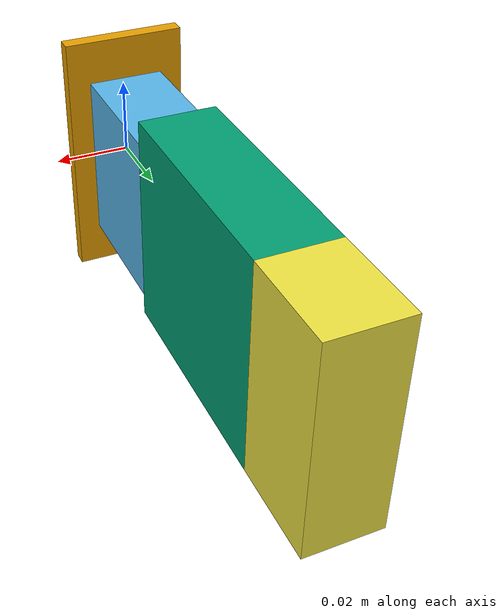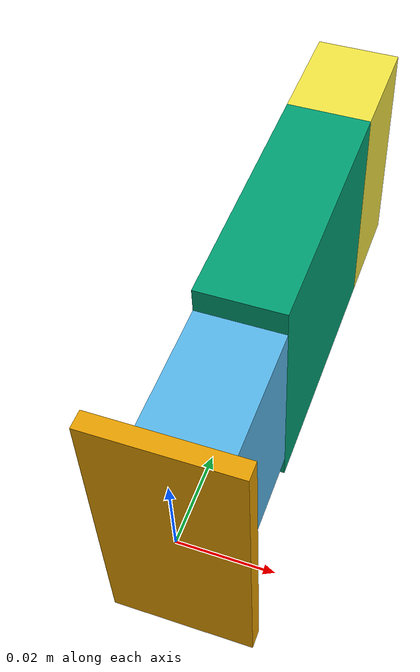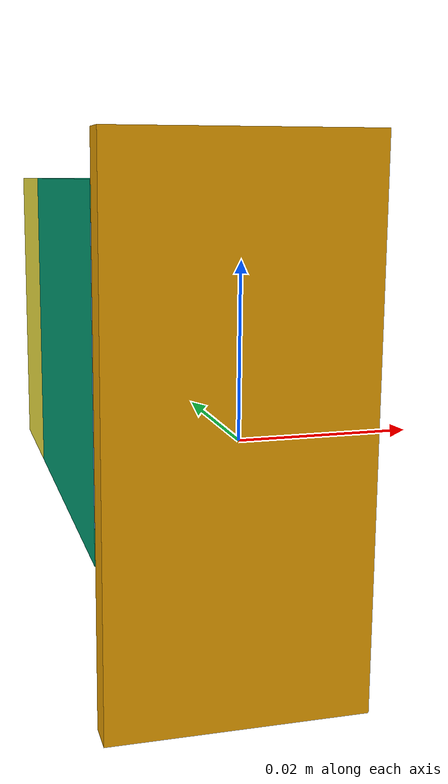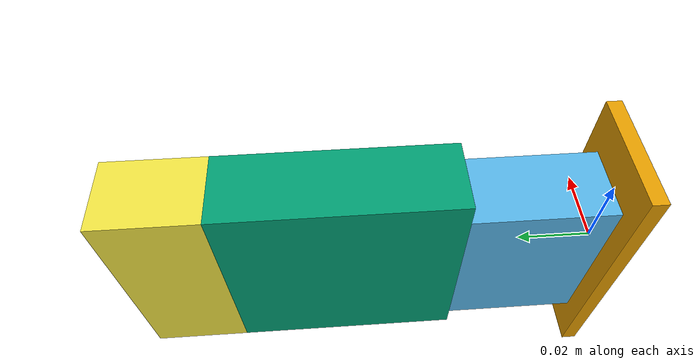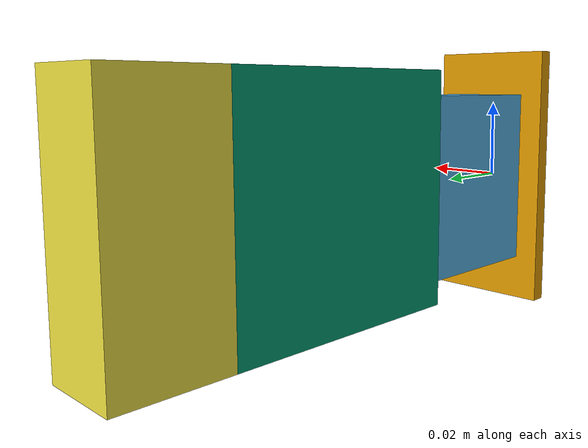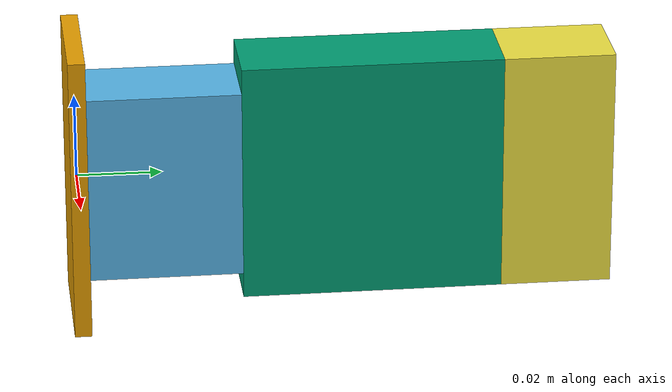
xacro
<?xml version="1.0" ?>

<robot name="plotter" xmlns:xacro="http://www.ros.org/wiki/xacro">
    <link name="base_link">
        <visual>
            <origin rpy="0 0 0" xyz="0 0 0"/>
            <geometry>
                <box size="0.032 0.004 0.068"/>
            </geometry>
        </visual>
    </link>

    <joint name="base_link__link_01" type="fixed">
        <origin rpy="0 0 0" xyz="0 ${0.004/2} 0"/>
        <parent link="base_link"/>
        <child link="link1"/>
    </joint>

    <link name="link1">
        <visual>
            <origin rpy="0 0 0" xyz="0 ${0.036/2 } 0"/>
            <geometry>
                <box size="0.02 0.036 0.045"/>
            </geometry>
        </visual>
    </link>

    <joint name="link_01__link_02" type="revolute">
      <axis xyz="0 0 1" />
      <limit effort="1000.0" lower="-1.57" upper="1.57" velocity="0.5" />

        <origin rpy="0 0 0" xyz="0 0.036 0"/>
        <parent link="link1"/>
        <child link="link2"/>
    </joint>

    <link name="link2">
        <visual>
            <origin rpy="0 0 0" xyz="0 ${0.061/2} 0"/>
            <geometry>
                <box size="0.02 0.061 0.057"/>
            </geometry>
        </visual>
    </link>

    <joint name="link_02__link_03" type="revolute">
      <axis xyz="0 0 1" />
      <limit effort="1000.0" lower="-1.57" upper="1.57" velocity="0.5" />

        <origin rpy="0 0 0" xyz="0 0.061 0"/>
        <parent link="link2"/>
        <child link="link3"/>
    </joint>

    <link name="link3">
        <visual>
            <origin rpy="0 0 0" xyz="0 ${0.026/2} 0"/>
            <geometry>
                <box size="0.02 0.026 0.057"/>
            </geometry>
        </visual>
    </link>

</robot>
